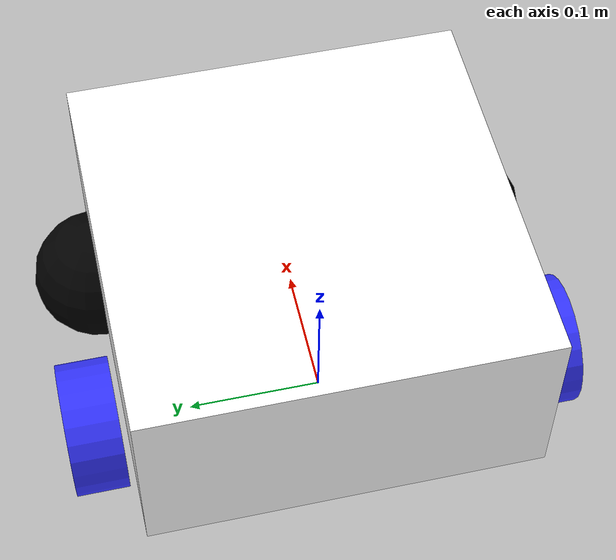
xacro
<?xml version="1.0"?>
<robot xmlns:xacro="http://www.ros.org/wiki/xacro" >

    <xacro:include filename="inertial_macros.xacro"/>

    <material name="white">
        <color rgba="1 1 1 1" />
    </material>

    <material name="orange">
        <color rgba="1 0.3 0.1 1"/>
    </material>

    <material name="blue">
        <color rgba="0.2 0.2 1 1"/>
    </material>

    <material name="black">
        <color rgba="0 0 0 1"/>
    </material>

    <material name="red">
        <color rgba="1 0 0 1"/>
    </material>

    <!-- BASE LINK -->

    <link name="base_link">
    </link>

    <!-- BASE_FOOTPRINT LINK -->

    <joint name="base_footprint_joint" type="fixed">
        <parent link="base_link"/>
        <child link="base_footprint"/>
        <origin xyz="0 0 0" rpy="0 0 0"/>
    </joint>

    <link name="base_footprint">
    </link>

    <!-- CHASSIS LINK -->

    <joint name="chassis_joint" type="fixed">
        <parent link="base_link"/>
        <child link="chassis"/>
        <origin xyz="-0.1 0 0"/>
    </joint>

    <link name="chassis">
        <visual>
            <origin xyz="0.15 0 0.075"/>
            <geometry>
                <box size="0.3 0.3 0.15"/>
            </geometry>
            <material name="white"/>
        </visual>
        <collision>
            <origin xyz="0.15 0 0.075"/>
            <geometry>
                <box size="0.3 0.3 0.15"/>
            </geometry>
        </collision>
        <xacro:inertial_box mass="0.5" x="0.3" y="0.3" z="0.15">
            <origin xyz="0.15 0 0.075" rpy="0 0 0"/>
        </xacro:inertial_box>
    </link>

    <gazebo reference="chassis">
        <material>Gazebo/White</material>
    </gazebo>

    <!-- LEFT WHEEL LINK -->

    <joint name="left_wheel_joint" type="continuous">
        <parent link="base_link"/>
        <child link="left_wheel"/>
        <origin xyz="0 0.175 0" rpy="-${pi/2} 0 0" />
        <axis xyz="0 0 1"/>
    </joint>

    <link name="left_wheel">
        <visual>
            <geometry>
                <cylinder radius="0.05" length="0.04"/>
            </geometry>
            <material name="blue"/>
        </visual>
        <collision>
            <geometry>
                <cylinder radius="0.05" length="0.04"/>
            </geometry>
        </collision>
        <xacro:inertial_cylinder mass="0.1" length="0.04" radius="0.05">
            <origin xyz="0 0 0" rpy="0 0 0"/>
        </xacro:inertial_cylinder>
    </link>

    <gazebo reference="left_wheel">
        <material>Gazebo/Blue</material>
    </gazebo>

    <!-- RIGHT WHEEL LINK -->

    <joint name="right_wheel_joint" type="continuous">
        <parent link="base_link"/>
        <child link="right_wheel"/>
        <origin xyz="0 -0.175 0" rpy="${pi/2} 0 0" />
        <axis xyz="0 0 -1"/>
    </joint>

    <link name="right_wheel">
        <visual>
            <geometry>
                <cylinder radius="0.05" length="0.04"/>
            </geometry>
            <material name="blue"/>
        </visual>
        <collision>
            <geometry>
                <cylinder radius="0.05" length="0.04"/>
            </geometry>
        </collision>
        <xacro:inertial_cylinder mass="0.1" length="0.04" radius="0.05">
            <origin xyz="0 0 0" rpy="0 0 0"/>
        </xacro:inertial_cylinder>
    </link>

    <gazebo reference="right_wheel">
        <material>Gazebo/Blue</material>
    </gazebo>

    <!-- CASTER WHEEL LINK -->

    <joint name="caster_wheel_joint" type="fixed">
        <parent link="chassis"/>
        <child link="caster_wheel"/>
        <origin xyz="0.24 0.15 0"/>
    </joint>

    <link name="caster_wheel">
        <visual>
            <geometry>
                <sphere radius="0.05"/>
            </geometry>
            <material name="black"/>
        </visual>
        <collision>
            <geometry>
                <sphere radius="0.05"/>
            </geometry>
        </collision>
        <xacro:inertial_sphere mass="0.1" radius="0.05">
            <origin xyz="0 0 0" rpy="0 0 0"/>
        </xacro:inertial_sphere>
    </link>

    <gazebo reference="caster_wheel">
        <material>Gazebo/Black</material>
        <mu1 value="0.001"/>
        <mu2 value="0.001"/>
    </gazebo>

       <!-- Segunda CASTER WHEEL LINK (Lado opuesto) -->

    <joint name="second_caster_wheel_joint" type="fixed">
        <parent link="chassis"/>
        <child link="second_caster_wheel"/>
        <origin xyz="0.24 -0.15 0"/>  <!-- Posición opuesta a la primera rueda loca -->
    </joint>

    <link name="second_caster_wheel">
        <visual>
            <geometry>
                <sphere radius="0.05"/>
            </geometry>
            <material name="black"/>
        </visual>
        <collision>
            <geometry>
                <sphere radius="0.05"/>
            </geometry>
        </collision>
        <xacro:inertial_sphere mass="0.1" radius="0.05">
            <origin xyz="0 0 0" rpy="0 0 0"/>
        </xacro:inertial_sphere>
    </link>

    <gazebo reference="second_caster_wheel">
        <material>Gazebo/Black</material>
        <mu1 value="0.001"/>
        <mu2 value="0.001"/>
    </gazebo>

    <!-- Resto del código no modificado para brevedad -->

</robot>
